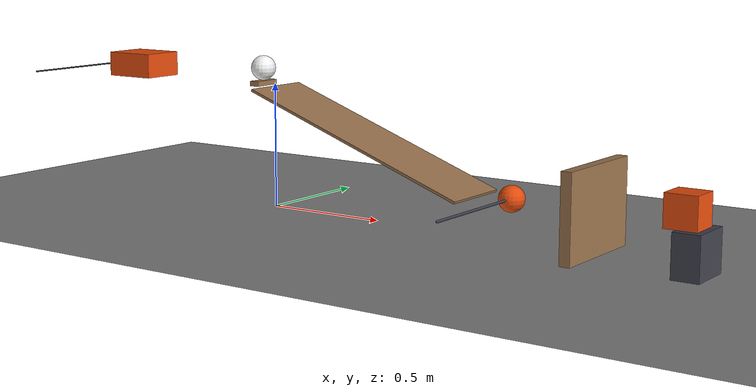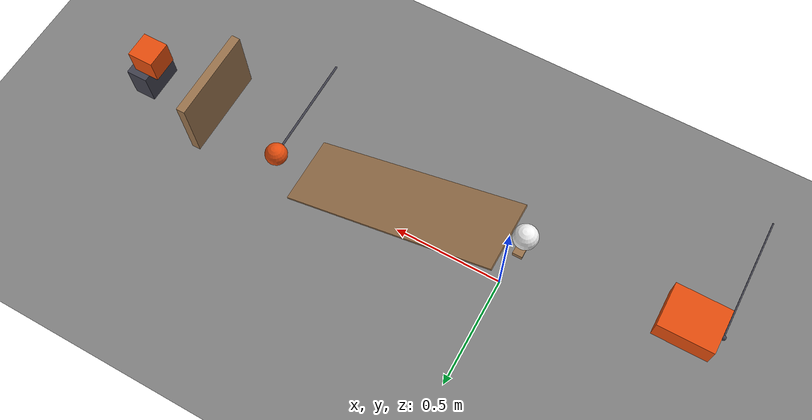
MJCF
<mujoco model="spring_chain_approximation">
  <compiler angle="radian"/>
  <option timestep="0.002"/>
  <worldbody>
    <geom name="floor" type="plane" size="6 6 0.1" friction="0.68 0.005 0.0001"/>
    <body name="ramp1">
      <geom name="ramp1" type="box" pos="0.469847 0 0.316312" size="0.5 0.15 0.005" euler="0 0.349066 0" friction="0.68 0.005 0.0001" rgba="0.6 0.45 0.3 1"/>
    </body>
    <body name="ball perch">
      <geom name="ball perch" type="box" pos="-0.06 0 0.5" size="0.02 0.06 0.01" friction="0.68 0.005 0.0001" rgba="0.6 0.45 0.3 1"/>
    </body>
    <body name="cart1" pos="-0.72 -10 0.539006">
      <joint name="cart1_guide_hinge" type="hinge" pos="0 0 0" axis="0 0 1" limited="true" range="-0.10472 0" damping="20"/>
      <geom name="cart1" type="box" pos="0 10 0" size="0.11 0.09 0.05" mass="0.5" friction="0.68 0.005 0.0001" rgba="0.9 0.3 0.05 1"/>
    </body>
    <body name="ball1" pos="-0.06 0 0.56">
      <freejoint/>
      <geom name="ball1" type="sphere" pos="0 0 0" size="0.05" mass="0.2" condim="6" friction="0.68 0.005 0.0001" rgba="0.95 0.95 0.95 1"/>
    </body>
    <body name="spring pusher" pos="-0.84 -0.5 0.539006">
      <joint name="launcher_hinge" type="hinge" pos="0 0 0" axis="0 0 1" limited="true" range="-0.8 0" stiffness="4.5" springref="-0.4" damping="0.04"/>
      <geom name="spring pusher" type="sphere" pos="0 0.5 0" size="0.01" mass="0.005" friction="0.68 0.005 0.0001" rgba="0.25 0.25 0.3 1"/>
      <geom name="launcher arm" type="capsule" size="0.003" fromto="0 0 0 0 0.49 0" mass="0.005" friction="0.68 0.005 0.0001" rgba="0.25 0.25 0.3 1"/>
    </body>
    <body name="pendulum1" pos="1.08969 -0.5 0.155">
      <joint name="pendulum1_hinge" type="hinge" pos="0 0 0" axis="0 0 1" limited="true" range="-0.698132 0" damping="0.04"/>
      <geom name="pendulum1" type="sphere" pos="0 0.5 0" size="0.05" mass="0.3" friction="0.68 0.005 0.0001" rgba="0.9 0.3 0.05 1"/>
      <geom name="pendulum rod" type="capsule" size="0.005" fromto="0 0 0 0 0.45 0" mass="0.05" friction="0.68 0.005 0.0001" rgba="0.25 0.25 0.3 1"/>
    </body>
    <body name="door1" pos="1.475 -0.117 0.02">
      <joint name="door1_hinge" type="hinge" pos="0 0 0" axis="0 1 0" limited="true" range="0 1.22173" damping="0.04"/>
      <geom name="door1" type="box" pos="0 1.38778e-17 0.16" size="0.02 0.21 0.16" mass="0.45" friction="0.68 0.005 0.0001" rgba="0.6 0.45 0.3 1"/>
    </body>
    <body name="block pedestal">
      <geom name="block pedestal" type="box" pos="1.845 -0.117 0.08" size="0.05 0.09 0.08" friction="0.68 0.005 0.0001" rgba="0.25 0.25 0.3 1"/>
    </body>
    <body name="block1" pos="1.81 -0.117 0.22">
      <freejoint/>
      <geom name="block1" type="box" pos="0 0 0" size="0.06 0.06 0.06" mass="0.35" friction="0.68 0.005 0.0001" rgba="0.9 0.3 0.05 1"/>
    </body>
  </worldbody>
  <keyframe>
    <key name="start" qpos="0 -0.06 0 0.56 1 0 0 0 0 0 0 1.81 -0.117 0.22 1 0 0 0" qvel="0 0 0 0 0 0 0 0 0 0 0 0 0 0 0 0"/>
  </keyframe>
</mujoco>
